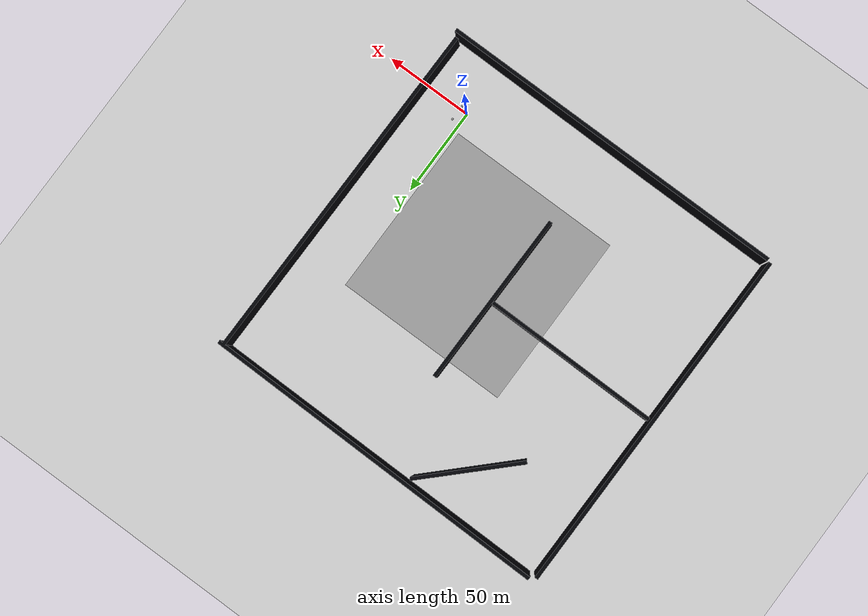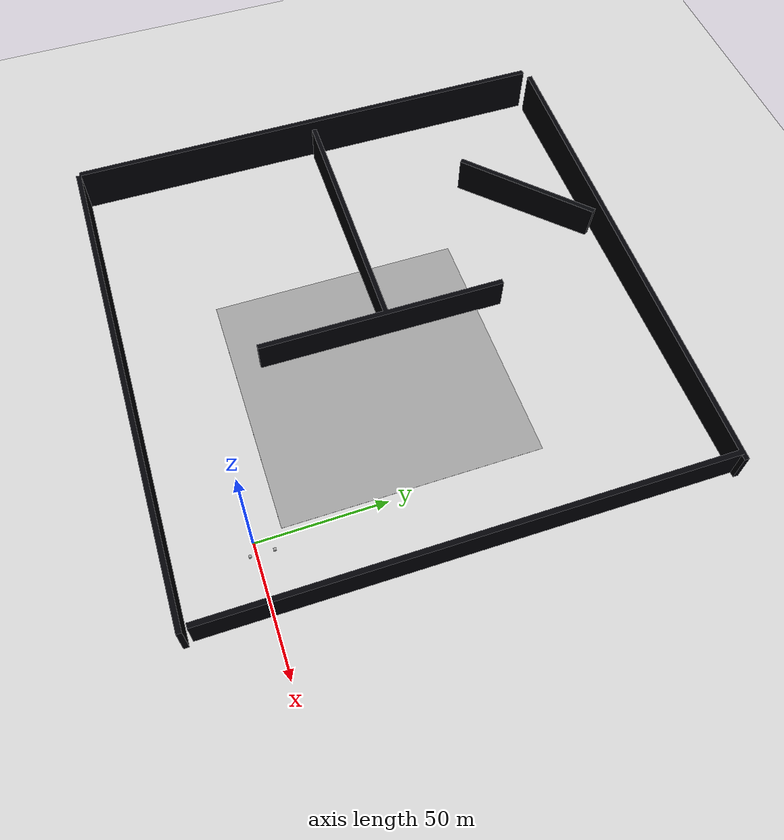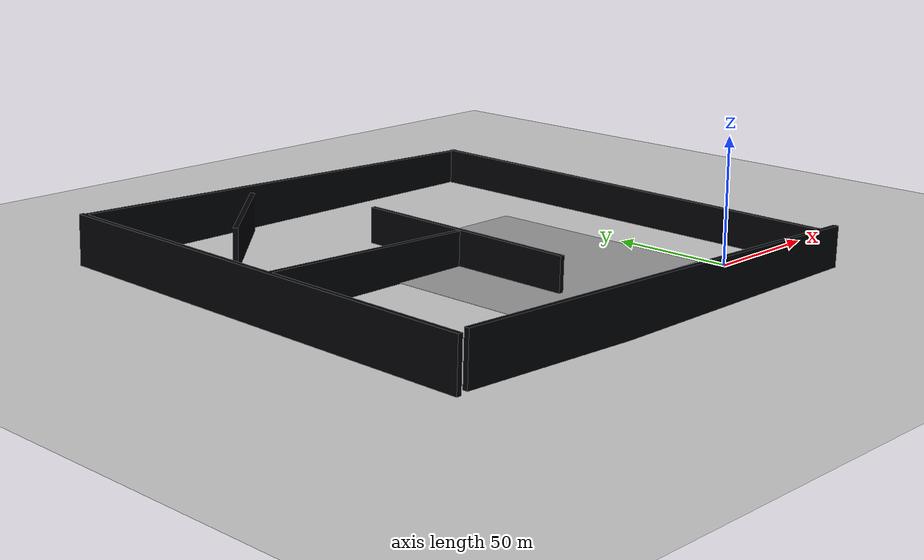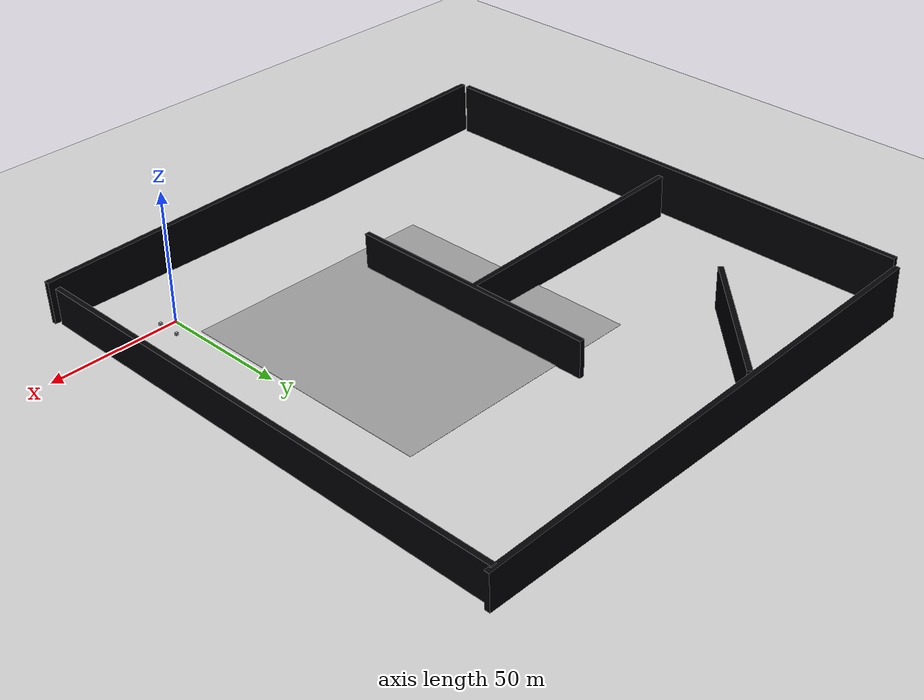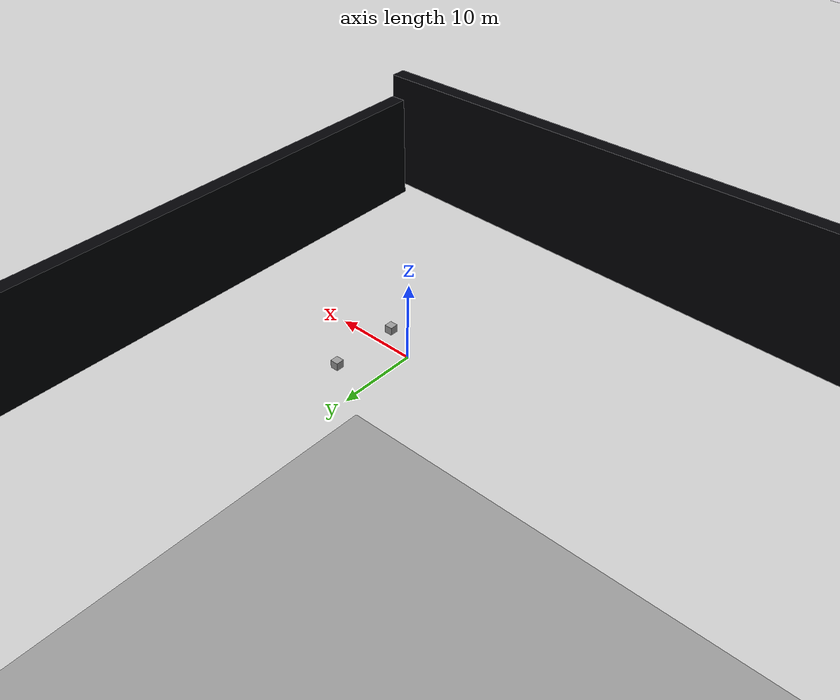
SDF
<sdf version="1.6">
 <world name="default">
  <light name="sun" type="directional">
   <pose>0 0 10 0 -0 0</pose>
   <diffuse>0.8 0.8 0.8 1</diffuse>
   <specular>0.1 0.1 0.1 1</specular>
   <attenuation>
    <range>1000</range>
    <constant>0.9</constant>
    <linear>0.01</linear>
    <quadratic>0.001</quadratic>
   </attenuation>
   <direction>-0.5 0.5 -1</direction>
  </light>
  <model name="ground_plane">
   <static>1</static>
   <link name="link">
    <collision name="collision">
     <geometry><plane><normal>0 0 1</normal><size>100 100</size></plane></geometry>
     <surface><friction><ode><mu>100</mu><mu2>50</mu2></ode></friction></surface>
    </collision>
    <visual name="visual">
     <cast_shadows>0</cast_shadows>
     <geometry><plane><normal>0 0 1</normal><size>100 100</size></plane></geometry>
     <material>
      <script><uri>file://media/materials/scripts/gazebo.material</uri><name>Gazebo/Grey</name></script>
     </material>
    </visual>
   </link>
  </model>
  <gravity>0 0 -9.8</gravity>
  <magnetic_field>6e-06 2.3e-05 -4.2e-05</magnetic_field>
  <atmosphere type="adiabatic"/>
  <physics name="default_physics" default="0" type="ode">
   <max_step_size>0.001</max_step_size>
   <real_time_factor>1</real_time_factor>
   <real_time_update_rate>1000</real_time_update_rate>
  </physics>
  <scene><ambient>0.4 0.4 0.4 1</ambient><background>0.7 0.7 0.7 1</background><shadows>1</shadows></scene>
  <spherical_coordinates>
   <surface_model>EARTH_WGS84</surface_model>
   <latitude_deg>0</latitude_deg>
   <longitude_deg>0</longitude_deg>
   <elevation>0</elevation>
   <heading_deg>0</heading_deg>
  </spherical_coordinates>
  <model name="ground_plane_0">
   <static>1</static>
   <link name="link">
    <collision name="collision">
     <geometry><plane><normal>0 0 1</normal><size>100 100</size></plane></geometry>
     <surface><friction><ode><mu>100</mu><mu2>50</mu2></ode></friction></surface>
    </collision>
    <visual name="visual">
     <cast_shadows>0</cast_shadows>
     <geometry><plane><normal>0 0 1</normal><size>100 100</size></plane></geometry>
     <material>
      <script><uri>file://media/materials/scripts/gazebo.material</uri><name>Gazebo/Grey</name></script>
     </material>
    </visual>
   </link>
   <pose>-52.3305 60.8345 0 0 -0 0</pose>
  </model>
  <model name="mapaSimple_0">
   <link name="mapa">
    <collision name="collision">
     <geometry><mesh><uri>model://mapaSimple/meshes/mapa.dae</uri><scale>1 1 1</scale></mesh></geometry>
    </collision>
    <visual name="visual">
     <geometry><mesh><uri>model://mapaSimple/meshes/mapa.dae</uri><scale>1 1 1</scale></mesh></geometry>
    </visual>
    <inertial>
     <inertia><ixx>1</ixx><ixy>0</ixy><ixz>0</ixz><iyy>1</iyy><iyz>0</iyz><izz>1</izz></inertia>
     <mass>1</mass>
    </inertial>
   </link>
   <pose>7.82115 -5.15349 0.680912 0.002754 0.030398 -0.006543</pose>
  </model>
  <model name="unit_box_0_0">
   <pose>4.65065 -2.2179 0.499993 0 -6e-06 0</pose>
   <link name="link">
    <inertial>
     <mass>1</mass>
     <inertia>
      <ixx>0.166667</ixx>
      <ixy>0</ixy>
      <ixz>0</ixz>
      <iyy>0.166667</iyy>
      <iyz>0</iyz>
      <izz>0.166667</izz>
     </inertia>
    </inertial>
    <collision name="collision"><geometry><box><size>1 1 1</size></box></geometry></collision>
    <visual name="visual">
     <geometry><box><size>1 1 1</size></box></geometry>
     <material>
      <script><name>Gazebo/Grey</name><uri>file://media/materials/scripts/gazebo.material</uri></script>
     </material>
    </visual>
   </link>
  </model>
  <model name="unit_box_0_1">
   <pose>4.75184 6.58727 0.499999 2e-06 -0 0</pose>
   <link name="link">
    <inertial>
     <mass>1</mass>
     <inertia>
      <ixx>0.166667</ixx>
      <ixy>0</ixy>
      <ixz>0</ixz>
      <iyy>0.166667</iyy>
      <iyz>0</iyz>
      <izz>0.166667</izz>
     </inertia>
    </inertial>
    <collision name="collision"><geometry><box><size>1 1 1</size></box></geometry></collision>
    <visual name="visual">
     <geometry><box><size>1 1 1</size></box></geometry>
     <material>
      <script><name>Gazebo/Grey</name><uri>file://media/materials/scripts/gazebo.material</uri></script>
     </material>
    </visual>
   </link>
  </model>
 </world>
</sdf>
